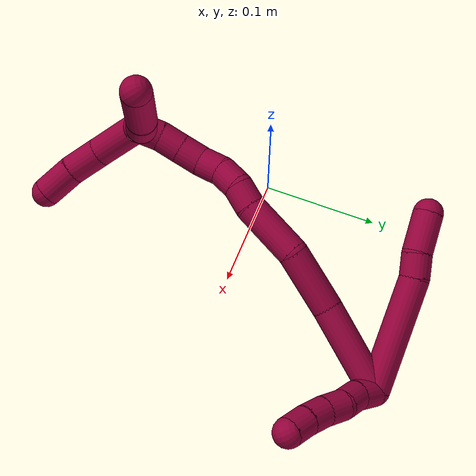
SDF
<sdf version="1.7">
 <world name="default">
  <model name="8">
   <static>0</static>
   <link name="8">
    <collision name="collision-cylinder-e_1_2_8">
     <pose>-0.036375 -0.008982 0.029957 0.291286 -0.860642 -0.134453</pose>
     <geometry><cylinder><radius>0.0125</radius><length>0.095942</length></cylinder></geometry>
     <surface>
      <friction><ode><mu>1.16</mu><mu2>1.16</mu2><slip1>0</slip1><slip2>0</slip2></ode></friction>
      <contact><ode><kp>1e+06</kp><kd>1</kd><max_vel>0</max_vel><min_depth>0.001</min_depth></ode></contact>
     </surface>
    </collision>
    <visual name="visual-cylinder-e_1_2_8">
     <pose>-0.036375 -0.008982 0.029957 0.291286 -0.860642 -0.134453</pose>
     <geometry><cylinder><radius>0.0125</radius><length>0.095942</length></cylinder></geometry>
     <material><ambient>0.584314 0 0.227451 1</ambient></material>
    </visual>
    <collision name="collision-cylinder-e_2_8_9">
     <pose>-0.081081 -0.02137 0.064563 0.632478 -0.965699 -0.339776</pose>
     <geometry><cylinder><radius>0.0125</radius><length>0.020261</length></cylinder></geometry>
     <surface>
      <friction><ode><mu>1.16</mu><mu2>1.16</mu2><slip1>0</slip1><slip2>0</slip2></ode></friction>
      <contact><ode><kp>1e+06</kp><kd>1</kd><max_vel>0</max_vel><min_depth>0.001</min_depth></ode></contact>
     </surface>
    </collision>
    <visual name="visual-cylinder-e_2_8_9">
     <pose>-0.081081 -0.02137 0.064563 0.632478 -0.965699 -0.339776</pose>
     <geometry><cylinder><radius>0.0125</radius><length>0.020261</length></cylinder></geometry>
     <material><ambient>0.584314 0 0.227451 1</ambient></material>
    </visual>
    <collision name="collision-cylinder-e_3_9_6">
     <pose>-0.103584 -0.027051 0.07813 0.249657 -0.994752 -0.136037</pose>
     <geometry><cylinder><radius>0.0125</radius><length>0.033797</length></cylinder></geometry>
     <surface>
      <friction><ode><mu>1.16</mu><mu2>1.16</mu2><slip1>0</slip1><slip2>0</slip2></ode></friction>
      <contact><ode><kp>1e+06</kp><kd>1</kd><max_vel>0</max_vel><min_depth>0.001</min_depth></ode></contact>
     </surface>
    </collision>
    <visual name="visual-cylinder-e_3_9_6">
     <pose>-0.103584 -0.027051 0.07813 0.249657 -0.994752 -0.136037</pose>
     <geometry><cylinder><radius>0.0125</radius><length>0.033797</length></cylinder></geometry>
     <material><ambient>0.584314 0 0.227451 1</ambient></material>
    </visual>
    <collision name="collision-cylinder-e_1_2_10">
     <pose>0.003687 -0.008462 -0.003846 1.99742 0.377614 0.576945</pose>
     <geometry><cylinder><radius>0.0125</radius><length>0.02</length></cylinder></geometry>
     <surface>
      <friction><ode><mu>1.16</mu><mu2>1.16</mu2><slip1>0</slip1><slip2>0</slip2></ode></friction>
      <contact><ode><kp>1e+06</kp><kd>1</kd><max_vel>0</max_vel><min_depth>0.001</min_depth></ode></contact>
     </surface>
    </collision>
    <visual name="visual-cylinder-e_1_2_10">
     <pose>0.003687 -0.008462 -0.003846 1.99742 0.377614 0.576945</pose>
     <geometry><cylinder><radius>0.0125</radius><length>0.02</length></cylinder></geometry>
     <material><ambient>0.584314 0 0.227451 1</ambient></material>
    </visual>
    <collision name="collision-cylinder-e_2_10_11">
     <pose>0.013367 -0.024553 -0.01012 1.87888 0.642657 0.854396</pose>
     <geometry><cylinder><radius>0.0125</radius><length>0.02</length></cylinder></geometry>
     <surface>
      <friction><ode><mu>1.16</mu><mu2>1.16</mu2><slip1>0</slip1><slip2>0</slip2></ode></friction>
      <contact><ode><kp>1e+06</kp><kd>1</kd><max_vel>0</max_vel><min_depth>0.001</min_depth></ode></contact>
     </surface>
    </collision>
    <visual name="visual-cylinder-e_2_10_11">
     <pose>0.013367 -0.024553 -0.01012 1.87888 0.642657 0.854396</pose>
     <geometry><cylinder><radius>0.0125</radius><length>0.02</length></cylinder></geometry>
     <material><ambient>0.584314 0 0.227451 1</ambient></material>
    </visual>
    <collision name="collision-cylinder-e_3_11_12">
     <pose>0.0235 -0.040097 -0.017042 2.08721 0.426775 0.71266</pose>
     <geometry><cylinder><radius>0.0125</radius><length>0.02</length></cylinder></geometry>
     <surface>
      <friction><ode><mu>1.16</mu><mu2>1.16</mu2><slip1>0</slip1><slip2>0</slip2></ode></friction>
      <contact><ode><kp>1e+06</kp><kd>1</kd><max_vel>0</max_vel><min_depth>0.001</min_depth></ode></contact>
     </surface>
    </collision>
    <visual name="visual-cylinder-e_3_11_12">
     <pose>0.0235 -0.040097 -0.017042 2.08721 0.426775 0.71266</pose>
     <geometry><cylinder><radius>0.0125</radius><length>0.02</length></cylinder></geometry>
     <material><ambient>0.584314 0 0.227451 1</ambient></material>
    </visual>
    <collision name="collision-cylinder-e_4_12_13">
     <pose>0.032859 -0.055675 -0.025286 2.02582 0.549115 0.848013</pose>
     <geometry><cylinder><radius>0.0125</radius><length>0.02</length></cylinder></geometry>
     <surface>
      <friction><ode><mu>1.16</mu><mu2>1.16</mu2><slip1>0</slip1><slip2>0</slip2></ode></friction>
      <contact><ode><kp>1e+06</kp><kd>1</kd><max_vel>0</max_vel><min_depth>0.001</min_depth></ode></contact>
     </surface>
    </collision>
    <visual name="visual-cylinder-e_4_12_13">
     <pose>0.032859 -0.055675 -0.025286 2.02582 0.549115 0.848013</pose>
     <geometry><cylinder><radius>0.0125</radius><length>0.02</length></cylinder></geometry>
     <material><ambient>0.584314 0 0.227451 1</ambient></material>
    </visual>
    <collision name="collision-cylinder-e_5_13_5">
     <pose>0.044059 -0.070374 -0.03287 2.06987 0.64108 1.01957</pose>
     <geometry><cylinder><radius>0.0125</radius><length>0.02</length></cylinder></geometry>
     <surface>
      <friction><ode><mu>1.16</mu><mu2>1.16</mu2><slip1>0</slip1><slip2>0</slip2></ode></friction>
      <contact><ode><kp>1e+06</kp><kd>1</kd><max_vel>0</max_vel><min_depth>0.001</min_depth></ode></contact>
     </surface>
    </collision>
    <visual name="visual-cylinder-e_5_13_5">
     <pose>0.044059 -0.070374 -0.03287 2.06987 0.64108 1.01957</pose>
     <geometry><cylinder><radius>0.0125</radius><length>0.02</length></cylinder></geometry>
     <material><ambient>0.584314 0 0.227451 1</ambient></material>
    </visual>
    <collision name="collision-cylinder-e_1_2_14">
     <pose>-0.028956 -0.025142 -0.002439 1.66752 -0.853471 -0.928779</pose>
     <geometry><cylinder><radius>0.0125</radius><length>0.07685</length></cylinder></geometry>
     <surface>
      <friction><ode><mu>1.16</mu><mu2>1.16</mu2><slip1>0</slip1><slip2>0</slip2></ode></friction>
      <contact><ode><kp>1e+06</kp><kd>1</kd><max_vel>0</max_vel><min_depth>0.001</min_depth></ode></contact>
     </surface>
    </collision>
    <visual name="visual-cylinder-e_1_2_14">
     <pose>-0.028956 -0.025142 -0.002439 1.66752 -0.853471 -0.928779</pose>
     <geometry><cylinder><radius>0.0125</radius><length>0.07685</length></cylinder></geometry>
     <material><ambient>0.584314 0 0.227451 1</ambient></material>
    </visual>
    <collision name="collision-cylinder-e_2_14_15">
     <pose>-0.075265 -0.069958 -0.006079 1.63173 -0.721847 -0.763063</pose>
     <geometry><cylinder><radius>0.0125</radius><length>0.052523</length></cylinder></geometry>
     <surface>
      <friction><ode><mu>1.16</mu><mu2>1.16</mu2><slip1>0</slip1><slip2>0</slip2></ode></friction>
      <contact><ode><kp>1e+06</kp><kd>1</kd><max_vel>0</max_vel><min_depth>0.001</min_depth></ode></contact>
     </surface>
    </collision>
    <visual name="visual-cylinder-e_2_14_15">
     <pose>-0.075265 -0.069958 -0.006079 1.63173 -0.721847 -0.763063</pose>
     <geometry><cylinder><radius>0.0125</radius><length>0.052523</length></cylinder></geometry>
     <material><ambient>0.584314 0 0.227451 1</ambient></material>
    </visual>
    <collision name="collision-cylinder-e_3_15_16">
     <pose>-0.111105 -0.104292 -0.015647 2.08948 -0.830835 -1.29931</pose>
     <geometry><cylinder><radius>0.0125</radius><length>0.050068</length></cylinder></geometry>
     <surface>
      <friction><ode><mu>1.16</mu><mu2>1.16</mu2><slip1>0</slip1><slip2>0</slip2></ode></friction>
      <contact><ode><kp>1e+06</kp><kd>1</kd><max_vel>0</max_vel><min_depth>0.001</min_depth></ode></contact>
     </surface>
    </collision>
    <visual name="visual-cylinder-e_3_15_16">
     <pose>-0.111105 -0.104292 -0.015647 2.08948 -0.830835 -1.29931</pose>
     <geometry><cylinder><radius>0.0125</radius><length>0.050068</length></cylinder></geometry>
     <material><ambient>0.584314 0 0.227451 1</ambient></material>
    </visual>
    <collision name="collision-cylinder-e_4_16_17">
     <pose>-0.138189 -0.124307 -0.025676 1.87155 -0.992832 -1.26781</pose>
     <geometry><cylinder><radius>0.0125</radius><length>0.020527</length></cylinder></geometry>
     <surface>
      <friction><ode><mu>1.16</mu><mu2>1.16</mu2><slip1>0</slip1><slip2>0</slip2></ode></friction>
      <contact><ode><kp>1e+06</kp><kd>1</kd><max_vel>0</max_vel><min_depth>0.001</min_depth></ode></contact>
     </surface>
    </collision>
    <visual name="visual-cylinder-e_4_16_17">
     <pose>-0.138189 -0.124307 -0.025676 1.87155 -0.992832 -1.26781</pose>
     <geometry><cylinder><radius>0.0125</radius><length>0.020527</length></cylinder></geometry>
     <material><ambient>0.584314 0 0.227451 1</ambient></material>
    </visual>
    <collision name="collision-cylinder-e_5_17_18">
     <pose>-0.15483 -0.133448 -0.031932 2.45256 -0.93372 -1.90422</pose>
     <geometry><cylinder><radius>0.0125</radius><length>0.020015</length></cylinder></geometry>
     <surface>
      <friction><ode><mu>1.16</mu><mu2>1.16</mu2><slip1>0</slip1><slip2>0</slip2></ode></friction>
      <contact><ode><kp>1e+06</kp><kd>1</kd><max_vel>0</max_vel><min_depth>0.001</min_depth></ode></contact>
     </surface>
    </collision>
    <visual name="visual-cylinder-e_5_17_18">
     <pose>-0.15483 -0.133448 -0.031932 2.45256 -0.93372 -1.90422</pose>
     <geometry><cylinder><radius>0.0125</radius><length>0.020015</length></cylinder></geometry>
     <material><ambient>0.584314 0 0.227451 1</ambient></material>
    </visual>
    <collision name="collision-cylinder-e_6_18_19">
     <pose>-0.16881 -0.141765 -0.043183 2.54376 -0.635114 -1.63525</pose>
     <geometry><cylinder><radius>0.0125</radius><length>0.020008</length></cylinder></geometry>
     <surface>
      <friction><ode><mu>1.16</mu><mu2>1.16</mu2><slip1>0</slip1><slip2>0</slip2></ode></friction>
      <contact><ode><kp>1e+06</kp><kd>1</kd><max_vel>0</max_vel><min_depth>0.001</min_depth></ode></contact>
     </surface>
    </collision>
    <visual name="visual-cylinder-e_6_18_19">
     <pose>-0.16881 -0.141765 -0.043183 2.54376 -0.635114 -1.63525</pose>
     <geometry><cylinder><radius>0.0125</radius><length>0.020008</length></cylinder></geometry>
     <material><ambient>0.584314 0 0.227451 1</ambient></material>
    </visual>
    <collision name="collision-cylinder-e_7_19_20">
     <pose>-0.179956 -0.153185 -0.054886 2.20311 -0.548048 -1.01245</pose>
     <geometry><cylinder><radius>0.0125</radius><length>0.020005</length></cylinder></geometry>
     <surface>
      <friction><ode><mu>1.16</mu><mu2>1.16</mu2><slip1>0</slip1><slip2>0</slip2></ode></friction>
      <contact><ode><kp>1e+06</kp><kd>1</kd><max_vel>0</max_vel><min_depth>0.001</min_depth></ode></contact>
     </surface>
    </collision>
    <visual name="visual-cylinder-e_7_19_20">
     <pose>-0.179956 -0.153185 -0.054886 2.20311 -0.548048 -1.01245</pose>
     <geometry><cylinder><radius>0.0125</radius><length>0.020005</length></cylinder></geometry>
     <material><ambient>0.584314 0 0.227451 1</ambient></material>
    </visual>
    <collision name="collision-cylinder-e_8_20_21">
     <pose>-0.19007 -0.167377 -0.064689 2.14803 -0.512207 -0.899921</pose>
     <geometry><cylinder><radius>0.0125</radius><length>0.020002</length></cylinder></geometry>
     <surface>
      <friction><ode><mu>1.16</mu><mu2>1.16</mu2><slip1>0</slip1><slip2>0</slip2></ode></friction>
      <contact><ode><kp>1e+06</kp><kd>1</kd><max_vel>0</max_vel><min_depth>0.001</min_depth></ode></contact>
     </surface>
    </collision>
    <visual name="visual-cylinder-e_8_20_21">
     <pose>-0.19007 -0.167377 -0.064689 2.14803 -0.512207 -0.899921</pose>
     <geometry><cylinder><radius>0.0125</radius><length>0.020002</length></cylinder></geometry>
     <material><ambient>0.584314 0 0.227451 1</ambient></material>
    </visual>
    <collision name="collision-cylinder-e_9_21_1">
     <pose>-0.197509 -0.182794 -0.074716 2.1469 -0.25654 -0.466529</pose>
     <geometry><cylinder><radius>0.0125</radius><length>0.020001</length></cylinder></geometry>
     <surface>
      <friction><ode><mu>1.16</mu><mu2>1.16</mu2><slip1>0</slip1><slip2>0</slip2></ode></friction>
      <contact><ode><kp>1e+06</kp><kd>1</kd><max_vel>0</max_vel><min_depth>0.001</min_depth></ode></contact>
     </surface>
    </collision>
    <visual name="visual-cylinder-e_9_21_1">
     <pose>-0.197509 -0.182794 -0.074716 2.1469 -0.25654 -0.466529</pose>
     <geometry><cylinder><radius>0.0125</radius><length>0.020001</length></cylinder></geometry>
     <material><ambient>0.584314 0 0.227451 1</ambient></material>
    </visual>
    <collision name="collision-cylinder-e_1_1_22">
     <pose>-0.19166 -0.196901 -0.072909 0.702927 0.735146 0.280549</pose>
     <geometry><cylinder><radius>0.0125</radius><length>0.025007</length></cylinder></geometry>
     <surface>
      <friction><ode><mu>1.16</mu><mu2>1.16</mu2><slip1>0</slip1><slip2>0</slip2></ode></friction>
      <contact><ode><kp>1e+06</kp><kd>1</kd><max_vel>0</max_vel><min_depth>0.001</min_depth></ode></contact>
     </surface>
    </collision>
    <visual name="visual-cylinder-e_1_1_22">
     <pose>-0.19166 -0.196901 -0.072909 0.702927 0.735146 0.280549</pose>
     <geometry><cylinder><radius>0.0125</radius><length>0.025007</length></cylinder></geometry>
     <material><ambient>0.584314 0 0.227451 1</ambient></material>
    </visual>
    <collision name="collision-cylinder-e_2_22_23">
     <pose>-0.177804 -0.211304 -0.05873 0.869289 0.461222 0.217145</pose>
     <geometry><cylinder><radius>0.0125</radius><length>0.024581</length></cylinder></geometry>
     <surface>
      <friction><ode><mu>1.16</mu><mu2>1.16</mu2><slip1>0</slip1><slip2>0</slip2></ode></friction>
      <contact><ode><kp>1e+06</kp><kd>1</kd><max_vel>0</max_vel><min_depth>0.001</min_depth></ode></contact>
     </surface>
    </collision>
    <visual name="visual-cylinder-e_2_22_23">
     <pose>-0.177804 -0.211304 -0.05873 0.869289 0.461222 0.217145</pose>
     <geometry><cylinder><radius>0.0125</radius><length>0.024581</length></cylinder></geometry>
     <material><ambient>0.584314 0 0.227451 1</ambient></material>
    </visual>
    <collision name="collision-cylinder-e_3_23_4">
     <pose>-0.164979 -0.239328 -0.037612 0.950451 0.296116 0.153192</pose>
     <geometry><cylinder><radius>0.0125</radius><length>0.050412</length></cylinder></geometry>
     <surface>
      <friction><ode><mu>1.16</mu><mu2>1.16</mu2><slip1>0</slip1><slip2>0</slip2></ode></friction>
      <contact><ode><kp>1e+06</kp><kd>1</kd><max_vel>0</max_vel><min_depth>0.001</min_depth></ode></contact>
     </surface>
    </collision>
    <visual name="visual-cylinder-e_3_23_4">
     <pose>-0.164979 -0.239328 -0.037612 0.950451 0.296116 0.153192</pose>
     <geometry><cylinder><radius>0.0125</radius><length>0.050412</length></cylinder></geometry>
     <material><ambient>0.584314 0 0.227451 1</ambient></material>
    </visual>
    <collision name="collision-cylinder-e_1_1_24">
     <pose>-0.198413 -0.190951 -0.10095 3.13947 0.07773 3.08692</pose>
     <geometry><cylinder><radius>0.0125</radius><length>0.042057</length></cylinder></geometry>
     <surface>
      <friction><ode><mu>1.16</mu><mu2>1.16</mu2><slip1>0</slip1><slip2>0</slip2></ode></friction>
      <contact><ode><kp>1e+06</kp><kd>1</kd><max_vel>0</max_vel><min_depth>0.001</min_depth></ode></contact>
     </surface>
    </collision>
    <visual name="visual-cylinder-e_1_1_24">
     <pose>-0.198413 -0.190951 -0.10095 3.13947 0.07773 3.08692</pose>
     <geometry><cylinder><radius>0.0125</radius><length>0.042057</length></cylinder></geometry>
     <material><ambient>0.584314 0 0.227451 1</ambient></material>
    </visual>
    <collision name="collision-cylinder-e_2_24_25">
     <pose>-0.193202 -0.193029 -0.135468 2.99263 0.255403 2.0887</pose>
     <geometry><cylinder><radius>0.0125</radius><length>0.028329</length></cylinder></geometry>
     <surface>
      <friction><ode><mu>1.16</mu><mu2>1.16</mu2><slip1>0</slip1><slip2>0</slip2></ode></friction>
      <contact><ode><kp>1e+06</kp><kd>1</kd><max_vel>0</max_vel><min_depth>0.001</min_depth></ode></contact>
     </surface>
    </collision>
    <visual name="visual-cylinder-e_2_24_25">
     <pose>-0.193202 -0.193029 -0.135468 2.99263 0.255403 2.0887</pose>
     <geometry><cylinder><radius>0.0125</radius><length>0.028329</length></cylinder></geometry>
     <material><ambient>0.584314 0 0.227451 1</ambient></material>
    </visual>
    <collision name="collision-cylinder-e_3_25_3">
     <pose>-0.18449 -0.195954 -0.162882 3.07742 0.354015 2.78651</pose>
     <geometry><cylinder><radius>0.0125</radius><length>0.029614</length></cylinder></geometry>
     <surface>
      <friction><ode><mu>1.16</mu><mu2>1.16</mu2><slip1>0</slip1><slip2>0</slip2></ode></friction>
      <contact><ode><kp>1e+06</kp><kd>1</kd><max_vel>0</max_vel><min_depth>0.001</min_depth></ode></contact>
     </surface>
    </collision>
    <visual name="visual-cylinder-e_3_25_3">
     <pose>-0.18449 -0.195954 -0.162882 3.07742 0.354015 2.78651</pose>
     <geometry><cylinder><radius>0.0125</radius><length>0.029614</length></cylinder></geometry>
     <material><ambient>0.584314 0 0.227451 1</ambient></material>
    </visual>
    <collision name="collision-sphere-3">
     <pose>-0.179357 -0.196845 -0.176742 0 -0 0</pose>
     <geometry><sphere><radius>0.0125</radius></sphere></geometry>
     <surface>
      <friction><ode><mu>1.16</mu><mu2>1.16</mu2><slip1>0</slip1><slip2>0</slip2></ode></friction>
      <contact><ode><kp>1e+06</kp><kd>1</kd><max_vel>0</max_vel><min_depth>0.001</min_depth></ode></contact>
     </surface>
    </collision>
    <visual name="visual-sphere-3">
     <pose>-0.179357 -0.196845 -0.176742 0 -0 0</pose>
     <geometry><sphere><radius>0.0125</radius></sphere></geometry>
     <material><ambient>0.584314 0 0.227451 1</ambient></material>
    </visual>
    <collision name="collision-sphere-25">
     <pose>-0.189623 -0.195063 -0.149021 0 -0 0</pose>
     <geometry><sphere><radius>0.0125</radius></sphere></geometry>
     <surface>
      <friction><ode><mu>1.16</mu><mu2>1.16</mu2><slip1>0</slip1><slip2>0</slip2></ode></friction>
      <contact><ode><kp>1e+06</kp><kd>1</kd><max_vel>0</max_vel><min_depth>0.001</min_depth></ode></contact>
     </surface>
    </collision>
    <visual name="visual-sphere-25">
     <pose>-0.189623 -0.195063 -0.149021 0 -0 0</pose>
     <geometry><sphere><radius>0.0125</radius></sphere></geometry>
     <material><ambient>0.584314 0 0.227451 1</ambient></material>
    </visual>
    <collision name="collision-sphere-24">
     <pose>-0.19678 -0.190995 -0.121915 0 -0 0</pose>
     <geometry><sphere><radius>0.0125</radius></sphere></geometry>
     <surface>
      <friction><ode><mu>1.16</mu><mu2>1.16</mu2><slip1>0</slip1><slip2>0</slip2></ode></friction>
      <contact><ode><kp>1e+06</kp><kd>1</kd><max_vel>0</max_vel><min_depth>0.001</min_depth></ode></contact>
     </surface>
    </collision>
    <visual name="visual-sphere-24">
     <pose>-0.19678 -0.190995 -0.121915 0 -0 0</pose>
     <geometry><sphere><radius>0.0125</radius></sphere></geometry>
     <material><ambient>0.584314 0 0.227451 1</ambient></material>
    </visual>
    <collision name="collision-sphere-4">
     <pose>-0.157624 -0.258945 -0.023597 0 -0 0</pose>
     <geometry><sphere><radius>0.0125</radius></sphere></geometry>
     <surface>
      <friction><ode><mu>1.16</mu><mu2>1.16</mu2><slip1>0</slip1><slip2>0</slip2></ode></friction>
      <contact><ode><kp>1e+06</kp><kd>1</kd><max_vel>0</max_vel><min_depth>0.001</min_depth></ode></contact>
     </surface>
    </collision>
    <visual name="visual-sphere-4">
     <pose>-0.157624 -0.258945 -0.023597 0 -0 0</pose>
     <geometry><sphere><radius>0.0125</radius></sphere></geometry>
     <material><ambient>0.584314 0 0.227451 1</ambient></material>
    </visual>
    <collision name="collision-sphere-23">
     <pose>-0.172334 -0.219712 -0.051627 0 -0 0</pose>
     <geometry><sphere><radius>0.0125</radius></sphere></geometry>
     <surface>
      <friction><ode><mu>1.16</mu><mu2>1.16</mu2><slip1>0</slip1><slip2>0</slip2></ode></friction>
      <contact><ode><kp>1e+06</kp><kd>1</kd><max_vel>0</max_vel><min_depth>0.001</min_depth></ode></contact>
     </surface>
    </collision>
    <visual name="visual-sphere-23">
     <pose>-0.172334 -0.219712 -0.051627 0 -0 0</pose>
     <geometry><sphere><radius>0.0125</radius></sphere></geometry>
     <material><ambient>0.584314 0 0.227451 1</ambient></material>
    </visual>
    <collision name="collision-sphere-22">
     <pose>-0.183274 -0.202897 -0.065833 0 -0 0</pose>
     <geometry><sphere><radius>0.0125</radius></sphere></geometry>
     <surface>
      <friction><ode><mu>1.16</mu><mu2>1.16</mu2><slip1>0</slip1><slip2>0</slip2></ode></friction>
      <contact><ode><kp>1e+06</kp><kd>1</kd><max_vel>0</max_vel><min_depth>0.001</min_depth></ode></contact>
     </surface>
    </collision>
    <visual name="visual-sphere-22">
     <pose>-0.183274 -0.202897 -0.065833 0 -0 0</pose>
     <geometry><sphere><radius>0.0125</radius></sphere></geometry>
     <material><ambient>0.584314 0 0.227451 1</ambient></material>
    </visual>
    <collision name="collision-sphere-1">
     <pose>-0.200046 -0.190906 -0.079985 0 -0 0</pose>
     <geometry><sphere><radius>0.0125</radius></sphere></geometry>
     <surface>
      <friction><ode><mu>1.16</mu><mu2>1.16</mu2><slip1>0</slip1><slip2>0</slip2></ode></friction>
      <contact><ode><kp>1e+06</kp><kd>1</kd><max_vel>0</max_vel><min_depth>0.001</min_depth></ode></contact>
     </surface>
    </collision>
    <visual name="visual-sphere-1">
     <pose>-0.200046 -0.190906 -0.079985 0 -0 0</pose>
     <geometry><sphere><radius>0.0125</radius></sphere></geometry>
     <material><ambient>0.584314 0 0.227451 1</ambient></material>
    </visual>
    <collision name="collision-sphere-21">
     <pose>-0.194971 -0.174683 -0.069446 0 -0 0</pose>
     <geometry><sphere><radius>0.0125</radius></sphere></geometry>
     <surface>
      <friction><ode><mu>1.16</mu><mu2>1.16</mu2><slip1>0</slip1><slip2>0</slip2></ode></friction>
      <contact><ode><kp>1e+06</kp><kd>1</kd><max_vel>0</max_vel><min_depth>0.001</min_depth></ode></contact>
     </surface>
    </collision>
    <visual name="visual-sphere-21">
     <pose>-0.194971 -0.174683 -0.069446 0 -0 0</pose>
     <geometry><sphere><radius>0.0125</radius></sphere></geometry>
     <material><ambient>0.584314 0 0.227451 1</ambient></material>
    </visual>
    <collision name="collision-sphere-11">
     <pose>0.019361 -0.032181 -0.012548 0 -0 0</pose>
     <geometry><sphere><radius>0.0125</radius></sphere></geometry>
     <surface>
      <friction><ode><mu>1.16</mu><mu2>1.16</mu2><slip1>0</slip1><slip2>0</slip2></ode></friction>
      <contact><ode><kp>1e+06</kp><kd>1</kd><max_vel>0</max_vel><min_depth>0.001</min_depth></ode></contact>
     </surface>
    </collision>
    <visual name="visual-sphere-11">
     <pose>0.019361 -0.032181 -0.012548 0 -0 0</pose>
     <geometry><sphere><radius>0.0125</radius></sphere></geometry>
     <material><ambient>0.584314 0 0.227451 1</ambient></material>
    </visual>
    <collision name="collision-sphere-10">
     <pose>0.007374 -0.016925 -0.007693 0 -0 0</pose>
     <geometry><sphere><radius>0.0125</radius></sphere></geometry>
     <surface>
      <friction><ode><mu>1.16</mu><mu2>1.16</mu2><slip1>0</slip1><slip2>0</slip2></ode></friction>
      <contact><ode><kp>1e+06</kp><kd>1</kd><max_vel>0</max_vel><min_depth>0.001</min_depth></ode></contact>
     </surface>
    </collision>
    <visual name="visual-sphere-10">
     <pose>0.007374 -0.016925 -0.007693 0 -0 0</pose>
     <geometry><sphere><radius>0.0125</radius></sphere></geometry>
     <material><ambient>0.584314 0 0.227451 1</ambient></material>
    </visual>
    <collision name="collision-sphere-6">
     <pose>-0.117756 -0.029325 0.087049 0 -0 0</pose>
     <geometry><sphere><radius>0.0125</radius></sphere></geometry>
     <surface>
      <friction><ode><mu>1.16</mu><mu2>1.16</mu2><slip1>0</slip1><slip2>0</slip2></ode></friction>
      <contact><ode><kp>1e+06</kp><kd>1</kd><max_vel>0</max_vel><min_depth>0.001</min_depth></ode></contact>
     </surface>
    </collision>
    <visual name="visual-sphere-6">
     <pose>-0.117756 -0.029325 0.087049 0 -0 0</pose>
     <geometry><sphere><radius>0.0125</radius></sphere></geometry>
     <material><ambient>0.584314 0 0.227451 1</ambient></material>
    </visual>
    <collision name="collision-sphere-9">
     <pose>-0.089413 -0.024776 0.06921 0 -0 0</pose>
     <geometry><sphere><radius>0.0125</radius></sphere></geometry>
     <surface>
      <friction><ode><mu>1.16</mu><mu2>1.16</mu2><slip1>0</slip1><slip2>0</slip2></ode></friction>
      <contact><ode><kp>1e+06</kp><kd>1</kd><max_vel>0</max_vel><min_depth>0.001</min_depth></ode></contact>
     </surface>
    </collision>
    <visual name="visual-sphere-9">
     <pose>-0.089413 -0.024776 0.06921 0 -0 0</pose>
     <geometry><sphere><radius>0.0125</radius></sphere></geometry>
     <material><ambient>0.584314 0 0.227451 1</ambient></material>
    </visual>
    <collision name="collision-sphere-2">
     <geometry><sphere><radius>0.0125</radius></sphere></geometry>
     <surface>
      <friction><ode><mu>1.16</mu><mu2>1.16</mu2><slip1>0</slip1><slip2>0</slip2></ode></friction>
      <contact><ode><kp>1e+06</kp><kd>1</kd><max_vel>0</max_vel><min_depth>0.001</min_depth></ode></contact>
     </surface>
    </collision>
    <visual name="visual-sphere-2">
     <geometry><sphere><radius>0.0125</radius></sphere></geometry>
     <material><ambient>0.584314 0 0.227451 1</ambient></material>
    </visual>
    <collision name="collision-sphere-19">
     <pose>-0.174745 -0.146298 -0.04984 0 -0 0</pose>
     <geometry><sphere><radius>0.0125</radius></sphere></geometry>
     <surface>
      <friction><ode><mu>1.16</mu><mu2>1.16</mu2><slip1>0</slip1><slip2>0</slip2></ode></friction>
      <contact><ode><kp>1e+06</kp><kd>1</kd><max_vel>0</max_vel><min_depth>0.001</min_depth></ode></contact>
     </surface>
    </collision>
    <visual name="visual-sphere-19">
     <pose>-0.174745 -0.146298 -0.04984 0 -0 0</pose>
     <geometry><sphere><radius>0.0125</radius></sphere></geometry>
     <material><ambient>0.584314 0 0.227451 1</ambient></material>
    </visual>
    <collision name="collision-sphere-8">
     <pose>-0.072749 -0.017963 0.059915 0 -0 0</pose>
     <geometry><sphere><radius>0.0125</radius></sphere></geometry>
     <surface>
      <friction><ode><mu>1.16</mu><mu2>1.16</mu2><slip1>0</slip1><slip2>0</slip2></ode></friction>
      <contact><ode><kp>1e+06</kp><kd>1</kd><max_vel>0</max_vel><min_depth>0.001</min_depth></ode></contact>
     </surface>
    </collision>
    <visual name="visual-sphere-8">
     <pose>-0.072749 -0.017963 0.059915 0 -0 0</pose>
     <geometry><sphere><radius>0.0125</radius></sphere></geometry>
     <material><ambient>0.584314 0 0.227451 1</ambient></material>
    </visual>
    <collision name="collision-sphere-12">
     <pose>0.027639 -0.048013 -0.021537 0 -0 0</pose>
     <geometry><sphere><radius>0.0125</radius></sphere></geometry>
     <surface>
      <friction><ode><mu>1.16</mu><mu2>1.16</mu2><slip1>0</slip1><slip2>0</slip2></ode></friction>
      <contact><ode><kp>1e+06</kp><kd>1</kd><max_vel>0</max_vel><min_depth>0.001</min_depth></ode></contact>
     </surface>
    </collision>
    <visual name="visual-sphere-12">
     <pose>0.027639 -0.048013 -0.021537 0 -0 0</pose>
     <geometry><sphere><radius>0.0125</radius></sphere></geometry>
     <material><ambient>0.584314 0 0.227451 1</ambient></material>
    </visual>
    <collision name="collision-sphere-13">
     <pose>0.038078 -0.063337 -0.029035 0 -0 0</pose>
     <geometry><sphere><radius>0.0125</radius></sphere></geometry>
     <surface>
      <friction><ode><mu>1.16</mu><mu2>1.16</mu2><slip1>0</slip1><slip2>0</slip2></ode></friction>
      <contact><ode><kp>1e+06</kp><kd>1</kd><max_vel>0</max_vel><min_depth>0.001</min_depth></ode></contact>
     </surface>
    </collision>
    <visual name="visual-sphere-13">
     <pose>0.038078 -0.063337 -0.029035 0 -0 0</pose>
     <geometry><sphere><radius>0.0125</radius></sphere></geometry>
     <material><ambient>0.584314 0 0.227451 1</ambient></material>
    </visual>
    <collision name="collision-sphere-5">
     <pose>0.050039 -0.077411 -0.036706 0 -0 0</pose>
     <geometry><sphere><radius>0.0125</radius></sphere></geometry>
     <surface>
      <friction><ode><mu>1.16</mu><mu2>1.16</mu2><slip1>0</slip1><slip2>0</slip2></ode></friction>
      <contact><ode><kp>1e+06</kp><kd>1</kd><max_vel>0</max_vel><min_depth>0.001</min_depth></ode></contact>
     </surface>
    </collision>
    <visual name="visual-sphere-5">
     <pose>0.050039 -0.077411 -0.036706 0 -0 0</pose>
     <geometry><sphere><radius>0.0125</radius></sphere></geometry>
     <material><ambient>0.584314 0 0.227451 1</ambient></material>
    </visual>
    <collision name="collision-sphere-14">
     <pose>-0.057912 -0.050283 -0.004879 0 -0 0</pose>
     <geometry><sphere><radius>0.0125</radius></sphere></geometry>
     <surface>
      <friction><ode><mu>1.16</mu><mu2>1.16</mu2><slip1>0</slip1><slip2>0</slip2></ode></friction>
      <contact><ode><kp>1e+06</kp><kd>1</kd><max_vel>0</max_vel><min_depth>0.001</min_depth></ode></contact>
     </surface>
    </collision>
    <visual name="visual-sphere-14">
     <pose>-0.057912 -0.050283 -0.004879 0 -0 0</pose>
     <geometry><sphere><radius>0.0125</radius></sphere></geometry>
     <material><ambient>0.584314 0 0.227451 1</ambient></material>
    </visual>
    <collision name="collision-sphere-15">
     <pose>-0.092618 -0.089633 -0.00728 0 -0 0</pose>
     <geometry><sphere><radius>0.0125</radius></sphere></geometry>
     <surface>
      <friction><ode><mu>1.16</mu><mu2>1.16</mu2><slip1>0</slip1><slip2>0</slip2></ode></friction>
      <contact><ode><kp>1e+06</kp><kd>1</kd><max_vel>0</max_vel><min_depth>0.001</min_depth></ode></contact>
     </surface>
    </collision>
    <visual name="visual-sphere-15">
     <pose>-0.092618 -0.089633 -0.00728 0 -0 0</pose>
     <geometry><sphere><radius>0.0125</radius></sphere></geometry>
     <material><ambient>0.584314 0 0.227451 1</ambient></material>
    </visual>
    <collision name="collision-sphere-16">
     <pose>-0.129593 -0.118952 -0.024015 0 -0 0</pose>
     <geometry><sphere><radius>0.0125</radius></sphere></geometry>
     <surface>
      <friction><ode><mu>1.16</mu><mu2>1.16</mu2><slip1>0</slip1><slip2>0</slip2></ode></friction>
      <contact><ode><kp>1e+06</kp><kd>1</kd><max_vel>0</max_vel><min_depth>0.001</min_depth></ode></contact>
     </surface>
    </collision>
    <visual name="visual-sphere-16">
     <pose>-0.129593 -0.118952 -0.024015 0 -0 0</pose>
     <geometry><sphere><radius>0.0125</radius></sphere></geometry>
     <material><ambient>0.584314 0 0.227451 1</ambient></material>
    </visual>
    <collision name="collision-sphere-17">
     <pose>-0.146786 -0.129663 -0.027337 0 -0 0</pose>
     <geometry><sphere><radius>0.0125</radius></sphere></geometry>
     <surface>
      <friction><ode><mu>1.16</mu><mu2>1.16</mu2><slip1>0</slip1><slip2>0</slip2></ode></friction>
      <contact><ode><kp>1e+06</kp><kd>1</kd><max_vel>0</max_vel><min_depth>0.001</min_depth></ode></contact>
     </surface>
    </collision>
    <visual name="visual-sphere-17">
     <pose>-0.146786 -0.129663 -0.027337 0 -0 0</pose>
     <geometry><sphere><radius>0.0125</radius></sphere></geometry>
     <material><ambient>0.584314 0 0.227451 1</ambient></material>
    </visual>
    <collision name="collision-sphere-18">
     <pose>-0.162875 -0.137233 -0.036527 0 -0 0</pose>
     <geometry><sphere><radius>0.0125</radius></sphere></geometry>
     <surface>
      <friction><ode><mu>1.16</mu><mu2>1.16</mu2><slip1>0</slip1><slip2>0</slip2></ode></friction>
      <contact><ode><kp>1e+06</kp><kd>1</kd><max_vel>0</max_vel><min_depth>0.001</min_depth></ode></contact>
     </surface>
    </collision>
    <visual name="visual-sphere-18">
     <pose>-0.162875 -0.137233 -0.036527 0 -0 0</pose>
     <geometry><sphere><radius>0.0125</radius></sphere></geometry>
     <material><ambient>0.584314 0 0.227451 1</ambient></material>
    </visual>
    <collision name="collision-sphere-20">
     <pose>-0.185168 -0.160072 -0.059932 0 -0 0</pose>
     <geometry><sphere><radius>0.0125</radius></sphere></geometry>
     <surface>
      <friction><ode><mu>1.16</mu><mu2>1.16</mu2><slip1>0</slip1><slip2>0</slip2></ode></friction>
      <contact><ode><kp>1e+06</kp><kd>1</kd><max_vel>0</max_vel><min_depth>0.001</min_depth></ode></contact>
     </surface>
    </collision>
    <visual name="visual-sphere-20">
     <pose>-0.185168 -0.160072 -0.059932 0 -0 0</pose>
     <geometry><sphere><radius>0.0125</radius></sphere></geometry>
     <material><ambient>0.584314 0 0.227451 1</ambient></material>
    </visual>
    <inertial>
     <pose>-0.100603 -0.102177 -0.026983 0 -0 0</pose>
     <mass>0.75</mass>
     <inertia><ixx>3.5e-05</ixx><ixy>0</ixy><ixz>0</ixz><iyy>7.4e-05</iyy><iyz>0</iyz><izz>0.000184</izz></inertia>
    </inertial>
   </link>
   <pose>0.161311 0.151404 0.024117 -0.934438 -0.108962 0.442124</pose>
  </model>
 </world>
</sdf>
